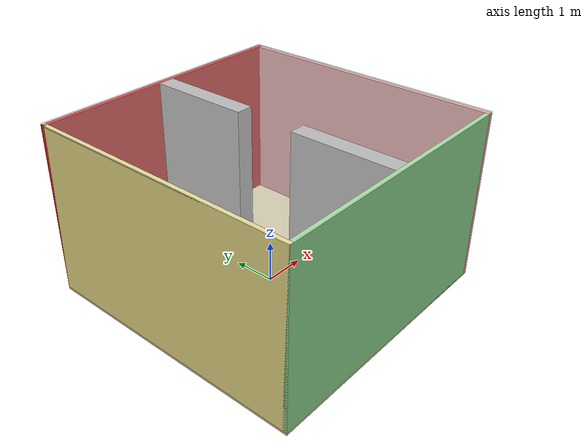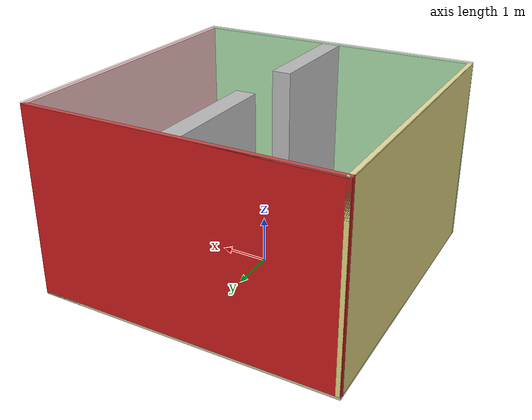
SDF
<sdf version="1.9">
 <world name="rl_room_two_chambers">
  <physics name="1ms" type="ignored">
   <max_step_size>0.001</max_step_size>
   <real_time_factor>1.0</real_time_factor>
  </physics>
  <plugin filename="gz-sim-physics-system" name="gz::sim::systems::Physics"/>
  <plugin filename="gz-sim-scene-broadcaster-system" name="gz::sim::systems::SceneBroadcaster"/>
  <plugin filename="gz-sim-user-commands-system" name="gz::sim::systems::UserCommands"/>
  <plugin filename="gz-sim-sensors-system" name="gz::sim::systems::Sensors">
   <render_engine>ogre2</render_engine>
  </plugin>
  <plugin filename="gz-sim-imu-system" name="gz::sim::systems::Imu"/>
  <plugin filename="gz-sim-navsat-system" name="gz::sim::systems::NavSat"/>
  <spherical_coordinates>
   <latitude_deg>-35.363262</latitude_deg>
   <longitude_deg>149.165237</longitude_deg>
   <elevation>584.0</elevation>
   <heading_deg>0</heading_deg>
   <surface_model>EARTH_WGS84</surface_model>
  </spherical_coordinates>
  <light type="directional" name="main_light">
   <cast_shadows>false</cast_shadows>
   <pose>0 0 10 0 0 0</pose>
   <diffuse>1.0 1.0 1.0 1</diffuse>
   <specular>0.5 0.5 0.5 1</specular>
   <direction>0.1 0.1 -1</direction>
  </light>
  <model name="floor">
   <static>true</static>
   <link name="link">
    <collision name="c"><geometry><box><size>6.4 6.4 0.05</size></box></geometry></collision>
    <visual name="v">
     <geometry><box><size>6.4 6.4 0.05</size></box></geometry>
     <material>
      <ambient>0.85 0.80 0.65 1</ambient>
      <diffuse>0.85 0.80 0.65 1</diffuse>
      <specular>0.1 0.1 0.1 1</specular>
     </material>
    </visual>
   </link>
  </model>
  <model name="wall_north">
   <static>true</static>
   <pose>0.0 3.1500000000000004 2.0 0 0 0</pose>
   <link name="link">
    <collision name="c"><geometry><box><size>6.4 0.1 4.0</size></box></geometry></collision>
    <visual name="v">
     <geometry><box><size>6.4 0.1 4.0</size></box></geometry>
     <material><ambient>0.85 0.12 0.12 1</ambient><diffuse>0.85 0.12 0.12 1</diffuse></material>
    </visual>
   </link>
  </model>
  <model name="wall_south">
   <static>true</static>
   <pose>0.0 -3.1500000000000004 2.0 0 0 0</pose>
   <link name="link">
    <collision name="c"><geometry><box><size>6.4 0.1 4.0</size></box></geometry></collision>
    <visual name="v">
     <geometry><box><size>6.4 0.1 4.0</size></box></geometry>
     <material><ambient>0.6 0.9 0.6 1</ambient><diffuse>0.6 0.9 0.6 1</diffuse></material>
    </visual>
   </link>
  </model>
  <model name="wall_east">
   <static>true</static>
   <pose>3.1500000000000004 0.0 2.0 0 0 0</pose>
   <link name="link">
    <collision name="c"><geometry><box><size>0.1 6.4 4.0</size></box></geometry></collision>
    <visual name="v">
     <geometry><box><size>0.1 6.4 4.0</size></box></geometry>
     <material><ambient>0.95 0.65 0.65 1</ambient><diffuse>0.95 0.65 0.65 1</diffuse></material>
    </visual>
   </link>
  </model>
  <model name="wall_west">
   <static>true</static>
   <pose>-3.1500000000000004 0.0 2.0 0 0 0</pose>
   <link name="link">
    <collision name="c"><geometry><box><size>0.1 6.4 4.0</size></box></geometry></collision>
    <visual name="v">
     <geometry><box><size>0.1 6.4 4.0</size></box></geometry>
     <material><ambient>0.95 0.9 0.55 1</ambient><diffuse>0.95 0.9 0.55 1</diffuse></material>
    </visual>
   </link>
  </model>
  <model name="wall_middle_south">
   <static>true</static>
   <pose>0.0 -1.9 2.0 0 0 0</pose>
   <link name="link">
    <collision name="c"><geometry><box><size>0.4 2.4 4.0</size></box></geometry></collision>
    <visual name="v">
     <geometry><box><size>0.4 2.4 4.0</size></box></geometry>
     <material><ambient>0.7 0.7 0.7 1</ambient><diffuse>0.7 0.7 0.7 1</diffuse></material>
    </visual>
   </link>
  </model>
  <model name="wall_middle_north">
   <static>true</static>
   <pose>0.0 1.9 2.0 0 0 0</pose>
   <link name="link">
    <collision name="c"><geometry><box><size>0.4 2.4 4.0</size></box></geometry></collision>
    <visual name="v">
     <geometry><box><size>0.4 2.4 4.0</size></box></geometry>
     <material><ambient>0.7 0.7 0.7 1</ambient><diffuse>0.7 0.7 0.7 1</diffuse></material>
    </visual>
   </link>
  </model>
  <model name="ceiling">
   <static>true</static>
   <link name="ceiling_link">
    <collision name="ceiling_col">
     <pose>0 0 4.0 0 0 0</pose>
     <geometry><box><size>6.4 6.4 0.05</size></box></geometry>
    </collision>
    <visual name="ceiling_vis">
     <pose>0 0 4.0 0 0 0</pose>
     <geometry><box><size>6.4 6.4 0.05</size></box></geometry>
     <material><ambient>0.8 0.8 0.8 0.3</ambient><diffuse>0.8 0.8 0.8 0.3</diffuse></material>
    </visual>
   </link>
  </model>
 </world>
</sdf>
